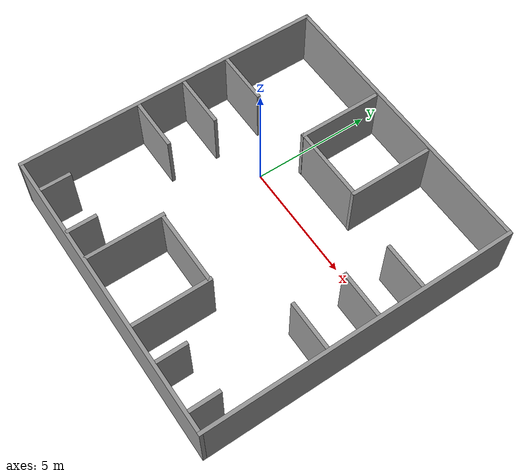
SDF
<?xml version='1.0'?>
<sdf version='1.7'>
  <model name='RUTE_AMR_RFIX'>
    <pose>2.08875 -1.43202 0 0 -0 0</pose>
    <link name='Wall_10'>
      <collision name='Wall_10_Collision'>
        <geometry>
          <box>
            <size>13 0.15 2.5</size>
          </box>
        </geometry>
        <pose>0 0 1.25 0 -0 0</pose>
      </collision>
      <visual name='Wall_10_Visual'>
        <pose>0 0 1.25 0 -0 0</pose>
        <geometry>
          <box>
            <size>13 0.15 2.5</size>
          </box>
        </geometry>
        <material>
          <script>
            <uri>file://media/materials/scripts/gazebo.material</uri>
            <name>Gazebo/Grey</name>
          </script>
          <ambient>1 1 1 1</ambient>
        </material>
        <meta>
          <layer>0</layer>
        </meta>
      </visual>
      <pose>6.11467 0 0 0 -0 -1.5708</pose>
    </link>
    <link name='Wall_11'>
      <collision name='Wall_11_Collision'>
        <geometry>
          <box>
            <size>12.3793 0.15 2.5</size>
          </box>
        </geometry>
        <pose>0 0 1.25 0 -0 0</pose>
      </collision>
      <visual name='Wall_11_Visual'>
        <pose>0 0 1.25 0 -0 0</pose>
        <geometry>
          <box>
            <size>12.3793 0.15 2.5</size>
          </box>
        </geometry>
        <material>
          <script>
            <uri>file://media/materials/scripts/gazebo.material</uri>
            <name>Gazebo/Grey</name>
          </script>
          <ambient>1 1 1 1</ambient>
        </material>
        <meta>
          <layer>0</layer>
        </meta>
      </visual>
      <pose>0 -6.425 0 0 -0 3.14159</pose>
    </link>
    <link name='Wall_15'>
      <collision name='Wall_15_Collision'>
        <geometry>
          <box>
            <size>2.25 0.15 2.5</size>
          </box>
        </geometry>
        <pose>0 0 1.25 0 -0 0</pose>
      </collision>
      <visual name='Wall_15_Visual'>
        <pose>0 0 1.25 0 -0 0</pose>
        <geometry>
          <box>
            <size>2.25 0.15 2.5</size>
          </box>
        </geometry>
        <material>
          <script>
            <uri>file://media/materials/scripts/gazebo.material</uri>
            <name>Gazebo/Grey</name>
          </script>
          <ambient>1 1 1 1</ambient>
        </material>
        <meta>
          <layer>0</layer>
        </meta>
      </visual>
      <pose>-4.92501 2.52629 0 0 -0 0</pose>
    </link>
    <link name='Wall_17'>
      <collision name='Wall_17_Collision'>
        <geometry>
          <box>
            <size>2.25 0.15 2.5</size>
          </box>
        </geometry>
        <pose>0 0 1.25 0 -0 0</pose>
      </collision>
      <visual name='Wall_17_Visual'>
        <pose>0 0 1.25 0 -0 0</pose>
        <geometry>
          <box>
            <size>2.25 0.15 2.5</size>
          </box>
        </geometry>
        <material>
          <script>
            <uri>file://media/materials/scripts/gazebo.material</uri>
            <name>Gazebo/Grey</name>
          </script>
          <ambient>1 1 1 1</ambient>
        </material>
        <meta>
          <layer>0</layer>
        </meta>
      </visual>
      <pose>-4.91083 0.543024 0 0 -0 0</pose>
    </link>
    <link name='Wall_19'>
      <collision name='Wall_19_Collision'>
        <geometry>
          <box>
            <size>2.25 0.15 2.5</size>
          </box>
        </geometry>
        <pose>0 0 1.25 0 -0 0</pose>
      </collision>
      <visual name='Wall_19_Visual'>
        <pose>0 0 1.25 0 -0 0</pose>
        <geometry>
          <box>
            <size>2.25 0.15 2.5</size>
          </box>
        </geometry>
        <material>
          <script>
            <uri>file://media/materials/scripts/gazebo.material</uri>
            <name>Gazebo/Grey</name>
          </script>
          <ambient>1 1 1 1</ambient>
        </material>
        <meta>
          <layer>0</layer>
        </meta>
      </visual>
      <pose>-4.9614 -1.46773 0 0 -0 0</pose>
    </link>
    <link name='Wall_21'>
      <collision name='Wall_21_Collision'>
        <geometry>
          <box>
            <size>2 0.15 2.5</size>
          </box>
        </geometry>
        <pose>0 0 1.25 0 -0 0</pose>
      </collision>
      <visual name='Wall_21_Visual'>
        <pose>0 0 1.25 0 -0 0</pose>
        <geometry>
          <box>
            <size>2 0.15 2.5</size>
          </box>
        </geometry>
        <material>
          <script>
            <uri>file://media/materials/scripts/gazebo.material</uri>
            <name>Gazebo/Grey</name>
          </script>
          <ambient>1 1 1 1</ambient>
        </material>
        <meta>
          <layer>0</layer>
        </meta>
      </visual>
      <pose>5.12805 2.58126 0 0 -0 3.14159</pose>
    </link>
    <link name='Wall_23'>
      <collision name='Wall_23_Collision'>
        <geometry>
          <box>
            <size>2 0.15 2.5</size>
          </box>
        </geometry>
        <pose>0 0 1.25 0 -0 0</pose>
      </collision>
      <visual name='Wall_23_Visual'>
        <pose>0 0 1.25 0 -0 0</pose>
        <geometry>
          <box>
            <size>2 0.15 2.5</size>
          </box>
        </geometry>
        <material>
          <script>
            <uri>file://media/materials/scripts/gazebo.material</uri>
            <name>Gazebo/Grey</name>
          </script>
          <ambient>1 1 1 1</ambient>
        </material>
        <meta>
          <layer>0</layer>
        </meta>
      </visual>
      <pose>5.12805 0.674945 0 0 -0 3.14159</pose>
    </link>
    <link name='Wall_25'>
      <collision name='Wall_25_Collision'>
        <geometry>
          <box>
            <size>2 0.15 2.5</size>
          </box>
        </geometry>
        <pose>0 0 1.25 0 -0 0</pose>
      </collision>
      <visual name='Wall_25_Visual'>
        <pose>0 0 1.25 0 -0 0</pose>
        <geometry>
          <box>
            <size>2 0.15 2.5</size>
          </box>
        </geometry>
        <material>
          <script>
            <uri>file://media/materials/scripts/gazebo.material</uri>
            <name>Gazebo/Grey</name>
          </script>
          <ambient>1 1 1 1</ambient>
        </material>
        <meta>
          <layer>0</layer>
        </meta>
      </visual>
      <pose>5.0511 -1.44244 0 0 -0 3.14159</pose>
    </link>
    <link name='Wall_27'>
      <collision name='Wall_27_Collision'>
        <geometry>
          <box>
            <size>3.49512 0.15 2.5</size>
          </box>
        </geometry>
        <pose>0 0 1.25 0 -0 0</pose>
      </collision>
      <visual name='Wall_27_Visual'>
        <pose>0 0 1.25 0 -0 0</pose>
        <geometry>
          <box>
            <size>3.49512 0.15 2.5</size>
          </box>
        </geometry>
        <material>
          <script>
            <uri>file://media/materials/scripts/gazebo.material</uri>
            <name>Gazebo/Grey</name>
          </script>
          <ambient>1 1 1 1</ambient>
        </material>
        <meta>
          <layer>0</layer>
        </meta>
      </visual>
      <pose>-1.35668 4.55492 0 0 -0 -1.5708</pose>
    </link>
    <link name='Wall_28'>
      <collision name='Wall_28_Collision'>
        <geometry>
          <box>
            <size>3.25 0.15 2.5</size>
          </box>
        </geometry>
        <pose>0 0 1.25 0 -0 0</pose>
      </collision>
      <visual name='Wall_28_Visual'>
        <pose>0 0 1.25 0 -0 0</pose>
        <geometry>
          <box>
            <size>3.25 0.15 2.5</size>
          </box>
        </geometry>
        <material>
          <script>
            <uri>file://media/materials/scripts/gazebo.material</uri>
            <name>Gazebo/Grey</name>
          </script>
          <ambient>1 1 1 1</ambient>
        </material>
        <meta>
          <layer>0</layer>
        </meta>
      </visual>
      <pose>0.176255 2.89951 0 0 -0 0</pose>
    </link>
    <link name='Wall_29'>
      <collision name='Wall_29_Collision'>
        <geometry>
          <box>
            <size>3.49512 0.15 2.5</size>
          </box>
        </geometry>
        <pose>0 0 1.25 0 -0 0</pose>
      </collision>
      <visual name='Wall_29_Visual'>
        <pose>0 0 1.25 0 -0 0</pose>
        <geometry>
          <box>
            <size>3.49512 0.15 2.5</size>
          </box>
        </geometry>
        <material>
          <script>
            <uri>file://media/materials/scripts/gazebo.material</uri>
            <name>Gazebo/Grey</name>
          </script>
          <ambient>1 1 1 1</ambient>
        </material>
        <meta>
          <layer>0</layer>
        </meta>
      </visual>
      <pose>1.74332 4.55492 0 0 -0 1.5708</pose>
    </link>
    <link name='Wall_31'>
      <collision name='Wall_31_Collision'>
        <geometry>
          <box>
            <size>3.27463 0.15 2.5</size>
          </box>
        </geometry>
        <pose>0 0 1.25 0 -0 0</pose>
      </collision>
      <visual name='Wall_31_Visual'>
        <pose>0 0 1.25 0 -0 0</pose>
        <geometry>
          <box>
            <size>3.27463 0.15 2.5</size>
          </box>
        </geometry>
        <material>
          <script>
            <uri>file://media/materials/scripts/gazebo.material</uri>
            <name>Gazebo/Grey</name>
          </script>
          <ambient>1 1 1 1</ambient>
        </material>
        <meta>
          <layer>0</layer>
        </meta>
      </visual>
      <pose>-1.35668 -4.80089 0 0 -0 1.5708</pose>
    </link>
    <link name='Wall_32'>
      <collision name='Wall_32_Collision'>
        <geometry>
          <box>
            <size>3.25 0.15 2.5</size>
          </box>
        </geometry>
        <pose>0 0 1.25 0 -0 0</pose>
      </collision>
      <visual name='Wall_32_Visual'>
        <pose>0 0 1.25 0 -0 0</pose>
        <geometry>
          <box>
            <size>3.25 0.15 2.5</size>
          </box>
        </geometry>
        <material>
          <script>
            <uri>file://media/materials/scripts/gazebo.material</uri>
            <name>Gazebo/Grey</name>
          </script>
          <ambient>1 1 1 1</ambient>
        </material>
        <meta>
          <layer>0</layer>
        </meta>
      </visual>
      <pose>0.193322 -3.27291 0 0 -0 0</pose>
    </link>
    <link name='Wall_33'>
      <collision name='Wall_33_Collision'>
        <geometry>
          <box>
            <size>3.27463 0.15 2.5</size>
          </box>
        </geometry>
        <pose>0 0 1.25 0 -0 0</pose>
      </collision>
      <visual name='Wall_33_Visual'>
        <pose>0 0 1.25 0 -0 0</pose>
        <geometry>
          <box>
            <size>3.27463 0.15 2.5</size>
          </box>
        </geometry>
        <material>
          <script>
            <uri>file://media/materials/scripts/gazebo.material</uri>
            <name>Gazebo/Grey</name>
          </script>
          <ambient>1 1 1 1</ambient>
        </material>
        <meta>
          <layer>0</layer>
        </meta>
      </visual>
      <pose>1.74332 -4.80089 0 0 -0 -1.5708</pose>
    </link>
    <link name='Wall_36'>
      <collision name='Wall_36_Collision'>
        <geometry>
          <box>
            <size>1.25 0.15 2.5</size>
          </box>
        </geometry>
        <pose>0 0 1.25 0 -0 0</pose>
      </collision>
      <visual name='Wall_36_Visual'>
        <pose>0 0 1.25 0 -0 0</pose>
        <geometry>
          <box>
            <size>1.25 0.15 2.5</size>
          </box>
        </geometry>
        <material>
          <script>
            <uri>file://media/materials/scripts/gazebo.material</uri>
            <name>Gazebo/Grey</name>
          </script>
          <ambient>1 1 1 1</ambient>
        </material>
        <meta>
          <layer>0</layer>
        </meta>
      </visual>
      <pose>-2.64074 -5.8132 0 0 -0 1.5708</pose>
    </link>
    <link name='Wall_38'>
      <collision name='Wall_38_Collision'>
        <geometry>
          <box>
            <size>1.25 0.15 2.5</size>
          </box>
        </geometry>
        <pose>0 0 1.25 0 -0 0</pose>
      </collision>
      <visual name='Wall_38_Visual'>
        <pose>0 0 1.25 0 -0 0</pose>
        <geometry>
          <box>
            <size>1.25 0.15 2.5</size>
          </box>
        </geometry>
        <material>
          <script>
            <uri>file://media/materials/scripts/gazebo.material</uri>
            <name>Gazebo/Grey</name>
          </script>
          <ambient>1 1 1 1</ambient>
        </material>
        <meta>
          <layer>0</layer>
        </meta>
      </visual>
      <pose>-4.72734 -5.73295 0 0 -0 1.5708</pose>
    </link>
    <link name='Wall_4'>
      <collision name='Wall_4_Collision'>
        <geometry>
          <box>
            <size>13 0.15 2.5</size>
          </box>
        </geometry>
        <pose>0 0 1.25 0 -0 0</pose>
      </collision>
      <visual name='Wall_4_Visual'>
        <pose>0 0 1.25 0 -0 0</pose>
        <geometry>
          <box>
            <size>13 0.15 2.5</size>
          </box>
        </geometry>
        <material>
          <script>
            <uri>file://media/materials/scripts/gazebo.material</uri>
            <name>Gazebo/Grey</name>
          </script>
          <ambient>1 1 1 1</ambient>
        </material>
        <meta>
          <layer>0</layer>
        </meta>
      </visual>
      <pose>-6.11467 0 0 0 -0 1.5708</pose>
    </link>
    <link name='Wall_41'>
      <collision name='Wall_41_Collision'>
        <geometry>
          <box>
            <size>1.25 0.15 2.5</size>
          </box>
        </geometry>
        <pose>0 0 1.25 0 -0 0</pose>
      </collision>
      <visual name='Wall_41_Visual'>
        <pose>0 0 1.25 0 -0 0</pose>
        <geometry>
          <box>
            <size>1.25 0.15 2.5</size>
          </box>
        </geometry>
        <material>
          <script>
            <uri>file://media/materials/scripts/gazebo.material</uri>
            <name>Gazebo/Grey</name>
          </script>
          <ambient>1 1 1 1</ambient>
        </material>
        <meta>
          <layer>0</layer>
        </meta>
      </visual>
      <pose>3.29804 -5.73295 0 0 -0 1.5708</pose>
    </link>
    <link name='Wall_43'>
      <collision name='Wall_43_Collision'>
        <geometry>
          <box>
            <size>1.25 0.15 2.5</size>
          </box>
        </geometry>
        <pose>0 0 1.25 0 -0 0</pose>
      </collision>
      <visual name='Wall_43_Visual'>
        <pose>0 0 1.25 0 -0 0</pose>
        <geometry>
          <box>
            <size>1.25 0.15 2.5</size>
          </box>
        </geometry>
        <material>
          <script>
            <uri>file://media/materials/scripts/gazebo.material</uri>
            <name>Gazebo/Grey</name>
          </script>
          <ambient>1 1 1 1</ambient>
        </material>
        <meta>
          <layer>0</layer>
        </meta>
      </visual>
      <pose>5.30438 -5.73295 0 0 -0 1.5708</pose>
    </link>
    <link name='Wall_6'>
      <collision name='Wall_6_Collision'>
        <geometry>
          <box>
            <size>12.3793 0.15 2.5</size>
          </box>
        </geometry>
        <pose>0 0 1.25 0 -0 0</pose>
      </collision>
      <visual name='Wall_6_Visual'>
        <pose>0 0 1.25 0 -0 0</pose>
        <geometry>
          <box>
            <size>12.3793 0.15 2.5</size>
          </box>
        </geometry>
        <material>
          <script>
            <uri>file://media/materials/scripts/gazebo.material</uri>
            <name>Gazebo/Grey</name>
          </script>
          <ambient>1 1 1 1</ambient>
        </material>
        <meta>
          <layer>0</layer>
        </meta>
      </visual>
      <pose>0 6.425 0 0 -0 0</pose>
    </link>
    <static>1</static>
  </model>
</sdf>
